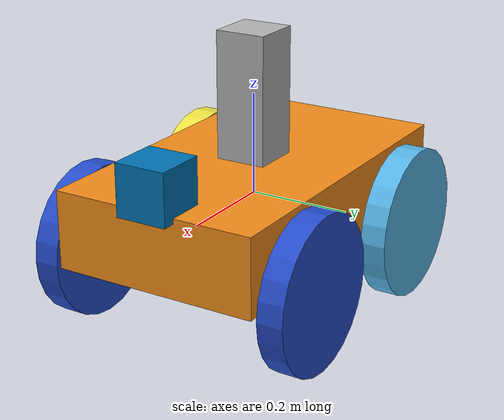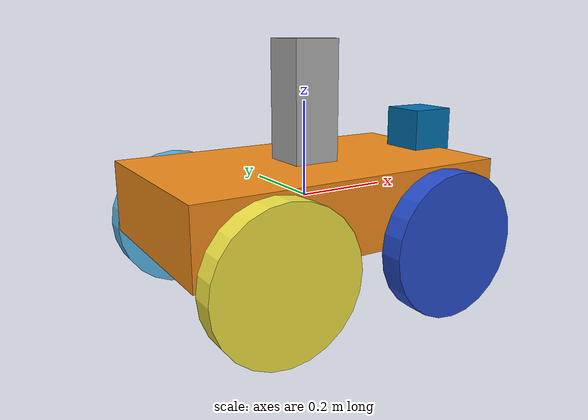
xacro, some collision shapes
<?xml version='1.0'?>

<robot name="myrobot" xmlns:xacro="http://www.ros.org/wiki/xacro">

  <xacro:include filename="$(find mybot_description)/urdf/parameter.xacro" />
  <xacro:include filename="$(find mybot_description)/urdf/mybot.gazebo" />
  <xacro:include filename="$(find mybot_description)/urdf/materials.xacro" />
  <xacro:include filename="$(find mybot_description)/parts/wheels.xacro" />
  <xacro:include filename="$(find mybot_description)/parts/lidar_2d.xacro" />

  <link name="base_link">
  </link>

  <joint name="dummy_joint" type="fixed">
     <parent link="base_link"/>
     <child link="chassis"/>
  </joint>

  <link name='chassis'>
    <pose>0 0 0.1 0 0 0</pose>

    <inertial>
      <mass value="${chassis_mass}"/>
      <origin xyz="0.0 0 0.1" rpy=" 0 0 0"/>
      <inertia
          ixx="0.1" ixy="0" ixz="0"
          iyy="0.1" iyz="0"
          izz="0.1"
      />
    </inertial>

    <collision name='collision'>
      <geometry>
        <box size="${chassis_L}  ${chassis_W}  ${chassis_H}"/>
      </geometry>
    </collision>

    <visual name='chassis_visual'>
      <origin xyz="${chassis_x}  ${chassis_y} ${chassis_z}" rpy=" 0 0 0"/>
      <geometry>
        <box size="${chassis_L}  ${chassis_W}  ${chassis_H}"/>
      </geometry>
    </visual>
  </link>

  <link name='bar'>
    <pose>0 0 0.1 0 0 0</pose>

    <inertial>
      <mass value="10.0"/>
      <origin xyz="0 0 0" rpy=" 0 0 0"/>
      <inertia
          ixx="0.1" ixy="0" ixz="0"
          iyy="0.1" iyz="0"
          izz="0.1"
      />
    </inertial>

    <collision name='collision'>
      <geometry>
        <box size="${bar_L}  ${bar_W}  ${bar_H}"/>
      </geometry>
    </collision>

    <visual name='bar_visual'>
      <origin xyz="0 0 ${bar_H/2}" rpy=" 0 0 0"/>
      <geometry>
        <box size="${bar_L}  ${bar_W}  ${bar_H}"/>
      </geometry>
    </visual>
  </link>

  <joint name="bar_joint" type="fixed">
    <origin xyz="${chassis_x + bar_x} ${chassis_y + bar_y} ${chassis_z + chassis_H/2 + bar_z}" rpy="0 0 0"/>
    <parent link="chassis"/>
    <child link="bar"/>
  </joint>
</robot>

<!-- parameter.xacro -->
<robot xmlns:xacro="http://www.ros.org/wiki/xacro">

<xacro:property name="chassis_x" value="0" />
<xacro:property name="chassis_y" value="0" />
<xacro:property name="chassis_z" value="0" />

<xacro:property name="chassis_L" value="0.6858" />
<xacro:property name="chassis_W" value="0.4064" />
<xacro:property name="chassis_H" value="0.1524" />
<xacro:property name="chassis_mass" value="10" />

<xacro:property name="bar_L" value="0.1" />
<xacro:property name="bar_W" value="0.1" />
<xacro:property name="bar_H" value="0.25" />

<xacro:property name="bar_x" value="0" />
<xacro:property name="bar_y" value="0" />
<xacro:property name="bar_z" value="0" />

<xacro:property name="wheel_R" value="0.15" />
<xacro:property name="wheel_L" value="0.05" />
<!-- off set the wheel from the chassis -->
<xacro:property name="wheels_offset" value="0.01" />
<xacro:property name="wheels_mass" value="2" />

<xacro:property name="lidar_x" value="-0.025" />
<xacro:property name="lidar_y" value="0" />
<xacro:property name="lidar_z" value="0.04" />

</robot>

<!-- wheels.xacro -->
<robot name="myrobot" xmlns:xacro="http://www.ros.org/wiki/xacro">
  <link name="left_wheel">
    <collision name="collision">
      <origin xyz="0 0 0" rpy="0 1.5707 1.5707"/>
      <geometry>
        <cylinder radius="${wheel_R}" length="${wheel_L}"/>
      </geometry>
    </collision>
    <visual name="left_wheel_visual">
      <origin xyz="0 0 0" rpy="0 1.5707 1.5707"/>
      <geometry>
        <cylinder radius="${wheel_R}" length="${wheel_L}"/>
      </geometry>
    </visual>
    <inertial>
      <origin xyz="0 0 0" rpy="0 1.5707 1.5707"/>
      <mass value="${wheels_mass}"/>
      <inertia
        ixx=".1" ixy="0.0" ixz="0.0"
        iyy=".1" iyz="0.0"
        izz=".1"/>
    </inertial>
</link>

    <link name="left_wheel_1">
    <collision name="collision">
      <origin xyz="0 0 0" rpy="0 1.5707 1.5707"/>
      <geometry>
        <cylinder radius="${wheel_R}" length="${wheel_L}"/>
      </geometry>
    </collision>
    <visual name="left_wheel_visual_1">
      <origin xyz="0 0 0" rpy="0 1.5707 1.5707"/>
      <geometry>
        <cylinder radius="${wheel_R}" length="${wheel_L}"/>
      </geometry>
    </visual>
    <inertial>
      <origin xyz="0 0 0" rpy="0 1.5707 1.5707"/>
      <mass value="${wheels_mass}"/>
      <inertia
        ixx=".1" ixy="0.0" ixz="0.0"
        iyy=".1" iyz="0.0"
        izz=".1"/>
    </inertial>
  </link>

  <link name="right_wheel">
    <collision name="collision">
      <origin xyz="0 0 0" rpy="0 1.5707 1.5707"/>
      <geometry>
        <cylinder radius="${wheel_R}" length="${wheel_L}"/>
      </geometry>
    </collision>
    <visual name="right_wheel_visual">
      <origin xyz="0 0 0" rpy="0 1.5707 1.5707"/>
      <geometry>
        <cylinder  radius="${wheel_R}" length="${wheel_L}"/>
      </geometry>
    </visual>
    <inertial>
      <origin xyz="0 0 0" rpy="0 1.5707 1.5707"/>
      <mass value="${wheels_mass}"/>
      <inertia
        ixx=".1" ixy="0.0" ixz="0.0"
        iyy=".1" iyz="0.0"
        izz=".1"/>
    </inertial>
  </link>

  <link name="right_wheel_1">
    <collision name="collision">
      <origin xyz="0 0 0" rpy="0 1.5707 1.5707"/>
      <geometry>
        <cylinder  radius="${wheel_R}" length="${wheel_L}"/>
      </geometry>
    </collision>
    <visual name="right_wheel_visual">
      <origin xyz="0 0 0" rpy="0 1.5707 1.5707"/>
      <geometry>
        <cylinder  radius="${wheel_R}" length="${wheel_L}"/>
      </geometry>
    </visual>
    <inertial>
      <origin xyz="0 0 0" rpy="0 1.5707 1.5707"/>
      <mass value="${wheels_mass}"/>
      <inertia
        ixx=".1" ixy="0.0" ixz="0.0"
        iyy=".1" iyz="0.0"
        izz=".1"/>
    </inertial>
  </link>

  <joint type="continuous" name="left_wheel_hinge">
    <origin xyz="${(chassis_x + chassis_L/2 - wheel_R)} ${chassis_y + (chassis_W/2 + wheel_L/2 + wheels_offset )} ${chassis_z - chassis_H/2}" rpy="0 0 0"/>
    <child link="left_wheel"/>
    <parent link="chassis"/>
    <axis xyz="0 1 0" rpy="0 0 0"/>
    <limit effort="10000" velocity="1000"/>
    <joint_properties damping="1.0" friction="1.0"/>
  </joint>

  <joint type="continuous" name="left_wheel_hinge_1">
    <origin xyz="${chassis_x - (chassis_L/2 - wheel_R)} ${chassis_y + (chassis_W/2 + wheel_L/2 + wheels_offset)} ${chassis_z - chassis_H/2}" rpy="0 0 0"/>
    <child link="left_wheel_1"/>
    <parent link="chassis"/>
    <axis xyz="0 1 0" rpy="0 0 0"/>
    <limit effort="10000" velocity="1000"/>
    <joint_properties damping="1.0" friction="1.0"/>
  </joint>

  <joint type="continuous" name="right_wheel_hinge">
    <origin xyz="${(chassis_x + chassis_L/2 - wheel_R)} ${chassis_y - (chassis_W/2 + wheel_L/2 + wheels_offset)} ${chassis_z - chassis_H/2}" rpy="0 0 0"/>
    <child link="right_wheel"/>
    <parent link="chassis"/>
    <axis xyz="0 1 0" rpy="0 0 0"/>
    <limit effort="10000" velocity="1000"/>
    <joint_properties damping="1.0" friction="1.0"/>
  </joint>

  <joint type="continuous" name="right_wheel_hinge_1">
    <origin xyz="${chassis_x - (chassis_L/2 - wheel_R)} ${chassis_y - (chassis_W/2 + wheel_L/2 + wheels_offset)} ${chassis_z - chassis_H/2}" rpy="0 0 0"/>
    <child link="right_wheel_1"/>
    <parent link="chassis"/>
    <axis xyz="0 1 0" rpy="0 0 0"/>
    <limit effort="10000" velocity="1000"/>
    <joint_properties damping="1.0" friction="1.0"/>
  </joint>

</robot>

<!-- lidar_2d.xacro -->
<robot name="myrobot" xmlns:xacro="http://www.ros.org/wiki/xacro">
  <joint name="hokuyo_joint" type="fixed">
    <axis xyz="0 1 0" />
    <origin xyz="${chassis_x + chassis_L/2 + lidar_x} ${chassis_y + lidar_y} ${chassis_z + chassis_H/2 + lidar_z}" rpy="0 0 0"/>
    <parent link="chassis"/>
    <child link="hokuyo"/>
  </joint>

  <!-- Hokuyo Laser -->
  <link name="hokuyo">
    <collision>
      <origin xyz="0 0 0" rpy="0 0 0"/>
      <geometry>
    <box size="0.1 0.1 0.1"/>
      </geometry>
    </collision>

    <visual>
      <origin xyz="0 0 0" rpy="0 0 0"/>
      <geometry>
        <mesh filename="package://mybot_description/meshes/hokuyo.dae"/>
      </geometry>
    </visual>

    <inertial>
      <mass value="1e-5" />
      <origin xyz="0 0 0" rpy="0 0 0"/>
      <inertia ixx="1e-6" ixy="0" ixz="0" iyy="1e-6" iyz="0" izz="1e-6" />
    </inertial>
  </link>
</robot>
